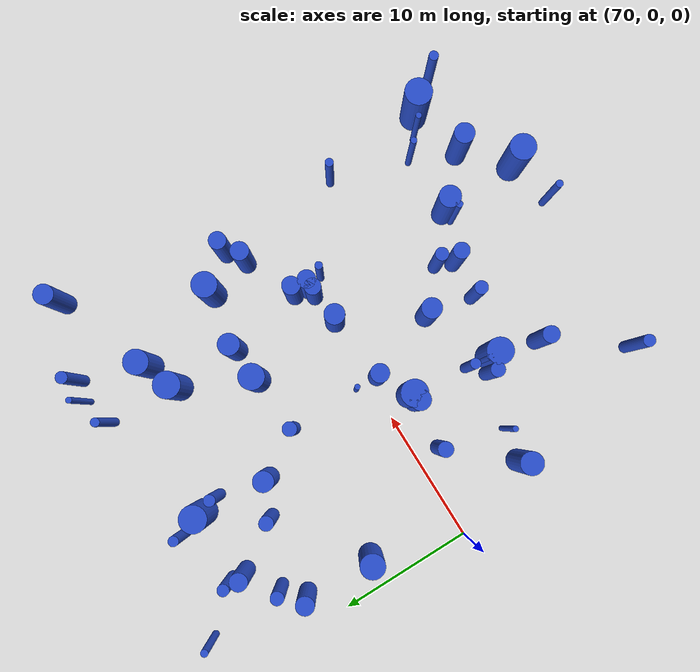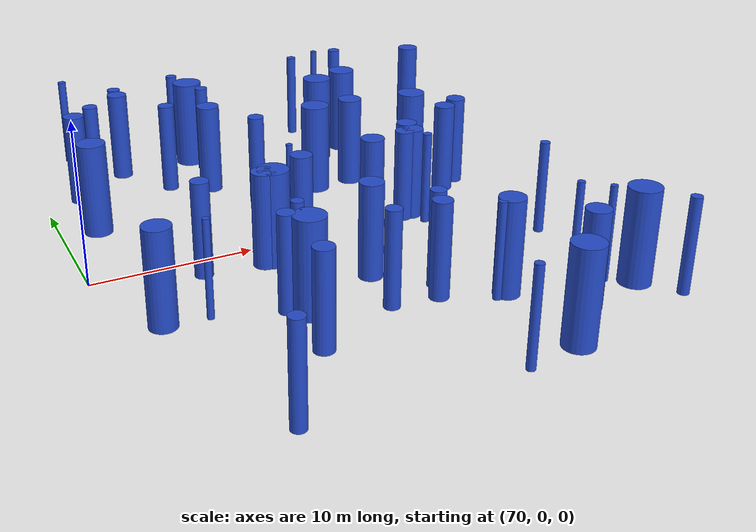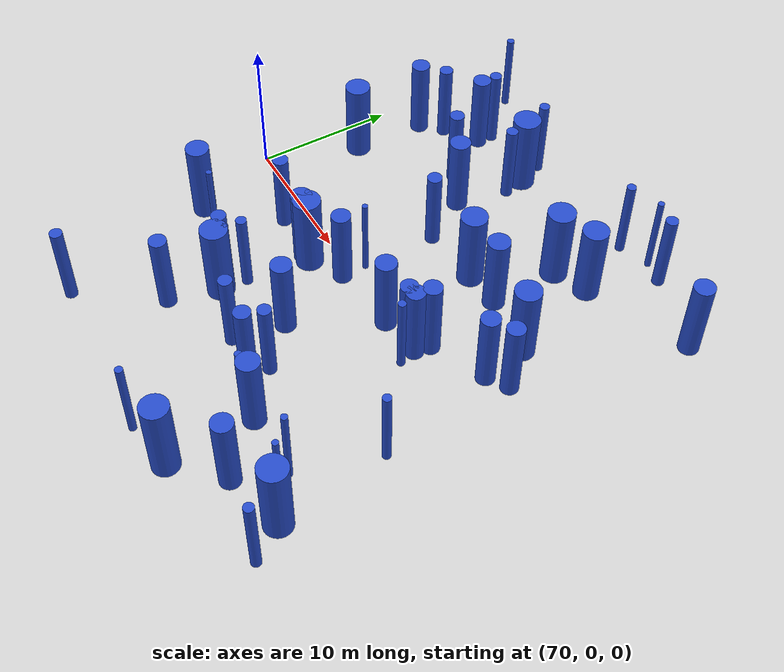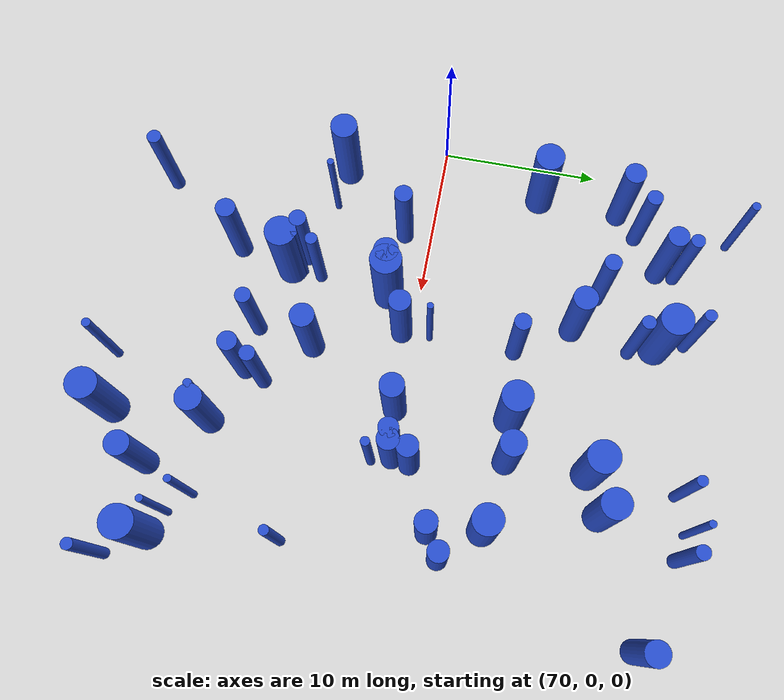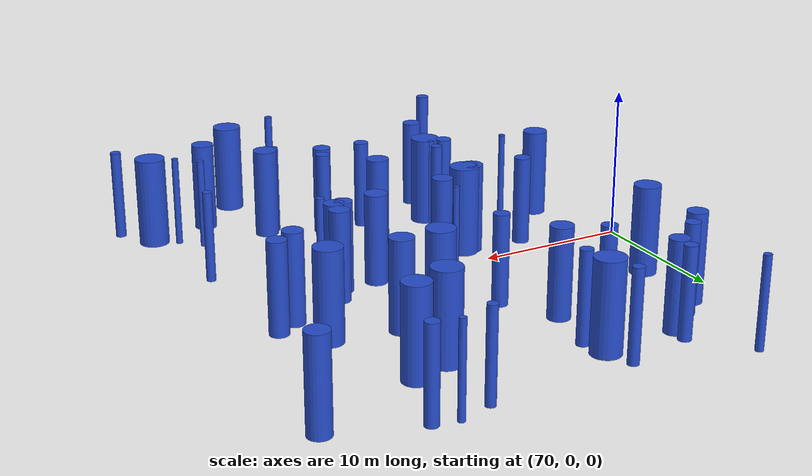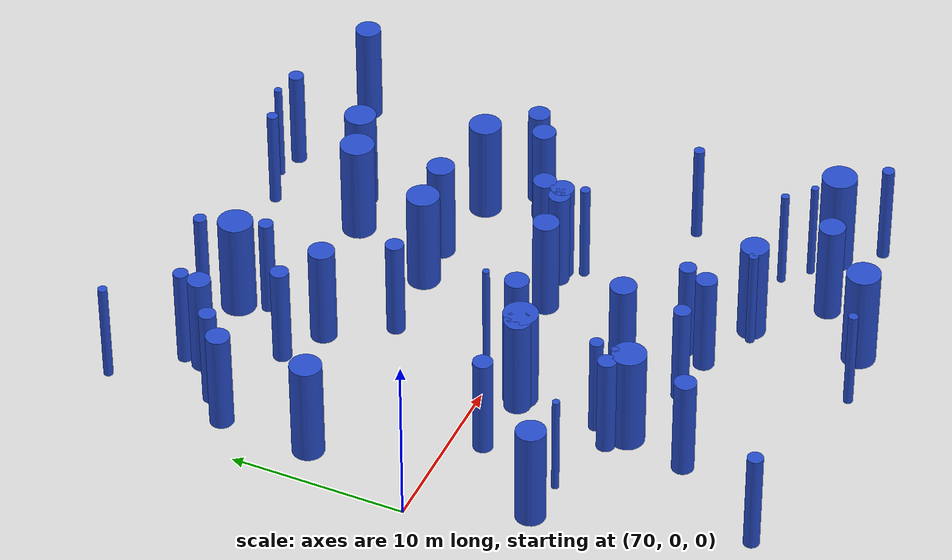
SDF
<sdf version="1.7">
 <world name="default">
  <model name="1">
   <static>1</static>
   <link name="link">
    <inertial>
     <mass>2</mass>
     <inertia><ixx>6.13726</ixx><ixy>0</ixy><ixz>0</ixz><iyy>6.13726</iyy><iyz>0</iyz><izz>0.274521</izz></inertia>
    </inertial>
    <collision name="collision">
     <geometry><cylinder><length>6</length><radius>0.523947</radius></cylinder></geometry>
     <surface><contact><collide_without_contact>1</collide_without_contact></contact></surface>
    </collision>
    <visual name="visual">
     <geometry><cylinder><length>6</length><radius>0.523947</radius></cylinder></geometry>
     <material>
      <script><uri>file://media/materials/scripts/gazebo.material</uri><name>Gazebo/Blue</name></script>
     </material>
    </visual>
    <gravity>0</gravity>
   </link>
   <pose>79.0825 -7.66138 3 0 -0 0</pose>
  </model>
  <model name="2">
   <static>1</static>
   <link name="link">
    <inertial>
     <mass>2</mass>
     <inertia><ixx>6.22225</ixx><ixy>0</ixy><ixz>0</ixz><iyy>6.22225</iyy><iyz>0</iyz><izz>0.444496</izz></inertia>
    </inertial>
    <collision name="collision">
     <geometry><cylinder><length>6</length><radius>0.666706</radius></cylinder></geometry>
     <surface><contact><collide_without_contact>1</collide_without_contact></contact></surface>
    </collision>
    <visual name="visual">
     <geometry><cylinder><length>6</length><radius>0.666706</radius></cylinder></geometry>
     <material>
      <script><uri>file://media/materials/scripts/gazebo.material</uri><name>Gazebo/Blue</name></script>
     </material>
    </visual>
    <gravity>0</gravity>
   </link>
   <pose>91.2671 0.181225 3 0 -0 0</pose>
  </model>
  <model name="4">
   <static>1</static>
   <link name="link">
    <inertial>
     <mass>2</mass>
     <inertia><ixx>6.48632</ixx><ixy>0</ixy><ixz>0</ixz><iyy>6.48632</iyy><iyz>0</iyz><izz>0.972646</izz></inertia>
    </inertial>
    <collision name="collision">
     <geometry><cylinder><length>6</length><radius>0.986228</radius></cylinder></geometry>
     <surface><contact><collide_without_contact>1</collide_without_contact></contact></surface>
    </collision>
    <visual name="visual">
     <geometry><cylinder><length>6</length><radius>0.986228</radius></cylinder></geometry>
     <material>
      <script><uri>file://media/materials/scripts/gazebo.material</uri><name>Gazebo/Blue</name></script>
     </material>
    </visual>
    <gravity>0</gravity>
   </link>
   <pose>81.4098 15.2934 3 0 -0 0</pose>
  </model>
  <model name="5">
   <static>1</static>
   <link name="link">
    <inertial>
     <mass>2</mass>
     <inertia><ixx>6.30722</ixx><ixy>0</ixy><ixz>0</ixz><iyy>6.30722</iyy><iyz>0</iyz><izz>0.614445</izz></inertia>
    </inertial>
    <collision name="collision">
     <geometry><cylinder><length>6</length><radius>0.783865</radius></cylinder></geometry>
     <surface><contact><collide_without_contact>1</collide_without_contact></contact></surface>
    </collision>
    <visual name="visual">
     <geometry><cylinder><length>6</length><radius>0.783865</radius></cylinder></geometry>
     <material>
      <script><uri>file://media/materials/scripts/gazebo.material</uri><name>Gazebo/Blue</name></script>
     </material>
    </visual>
    <gravity>0</gravity>
   </link>
   <pose>90.2586 7.07092 3 0 -0 0</pose>
  </model>
  <model name="9">
   <static>1</static>
   <link name="link">
    <inertial>
     <mass>2</mass>
     <inertia><ixx>6.13471</ixx><ixy>0</ixy><ixz>0</ixz><iyy>6.13471</iyy><iyz>0</iyz><izz>0.269422</izz></inertia>
    </inertial>
    <collision name="collision">
     <geometry><cylinder><length>6</length><radius>0.519059</radius></cylinder></geometry>
     <surface><contact><collide_without_contact>1</collide_without_contact></contact></surface>
    </collision>
    <visual name="visual">
     <geometry><cylinder><length>6</length><radius>0.519059</radius></cylinder></geometry>
     <material>
      <script><uri>file://media/materials/scripts/gazebo.material</uri><name>Gazebo/Blue</name></script>
     </material>
    </visual>
    <gravity>0</gravity>
   </link>
   <pose>83.1473 6.55157 3 0 -0 0</pose>
  </model>
  <model name="10">
   <static>1</static>
   <link name="link">
    <inertial>
     <mass>2</mass>
     <inertia><ixx>6.17693</ixx><ixy>0</ixy><ixz>0</ixz><iyy>6.17693</iyy><iyz>0</iyz><izz>0.353861</izz></inertia>
    </inertial>
    <collision name="collision">
     <geometry><cylinder><length>6</length><radius>0.594862</radius></cylinder></geometry>
     <surface><contact><collide_without_contact>1</collide_without_contact></contact></surface>
    </collision>
    <visual name="visual">
     <geometry><cylinder><length>6</length><radius>0.594862</radius></cylinder></geometry>
     <material>
      <script><uri>file://media/materials/scripts/gazebo.material</uri><name>Gazebo/Blue</name></script>
     </material>
    </visual>
    <gravity>0</gravity>
   </link>
   <pose>87.3229 -9.93889 3 0 -0 0</pose>
  </model>
  <model name="12">
   <static>1</static>
   <link name="link">
    <inertial>
     <mass>2</mass>
     <inertia><ixx>6.47437</ixx><ixy>0</ixy><ixz>0</ixz><iyy>6.47437</iyy><iyz>0</iyz><izz>0.948739</izz></inertia>
    </inertial>
    <collision name="collision">
     <geometry><cylinder><length>6</length><radius>0.974032</radius></cylinder></geometry>
     <surface><contact><collide_without_contact>1</collide_without_contact></contact></surface>
    </collision>
    <visual name="visual">
     <geometry><cylinder><length>6</length><radius>0.974032</radius></cylinder></geometry>
     <material>
      <script><uri>file://media/materials/scripts/gazebo.material</uri><name>Gazebo/Blue</name></script>
     </material>
    </visual>
    <gravity>0</gravity>
   </link>
   <pose>80.7273 -1.97986 3 0 -0 0</pose>
  </model>
  <model name="15">
   <static>1</static>
   <link name="link">
    <inertial>
     <mass>2</mass>
     <inertia><ixx>6.19986</ixx><ixy>0</ixy><ixz>0</ixz><iyy>6.19986</iyy><iyz>0</iyz><izz>0.399711</izz></inertia>
    </inertial>
    <collision name="collision">
     <geometry><cylinder><length>6</length><radius>0.632227</radius></cylinder></geometry>
     <surface><contact><collide_without_contact>1</collide_without_contact></contact></surface>
    </collision>
    <visual name="visual">
     <geometry><cylinder><length>6</length><radius>0.632227</radius></cylinder></geometry>
     <material>
      <script><uri>file://media/materials/scripts/gazebo.material</uri><name>Gazebo/Blue</name></script>
     </material>
    </visual>
    <gravity>0</gravity>
   </link>
   <pose>96.7974 3.99695 3 0 -0 0</pose>
  </model>
  <model name="19">
   <static>1</static>
   <link name="link">
    <inertial>
     <mass>2</mass>
     <inertia><ixx>6.40628</ixx><ixy>0</ixy><ixz>0</ixz><iyy>6.40628</iyy><iyz>0</iyz><izz>0.812551</izz></inertia>
    </inertial>
    <collision name="collision">
     <geometry><cylinder><length>6</length><radius>0.901416</radius></cylinder></geometry>
     <surface><contact><collide_without_contact>1</collide_without_contact></contact></surface>
    </collision>
    <visual name="visual">
     <geometry><cylinder><length>6</length><radius>0.901416</radius></cylinder></geometry>
     <material>
      <script><uri>file://media/materials/scripts/gazebo.material</uri><name>Gazebo/Blue</name></script>
     </material>
    </visual>
    <gravity>0</gravity>
   </link>
   <pose>92.5748 13.081 3 0 -0 0</pose>
  </model>
  <model name="21">
   <static>1</static>
   <link name="link">
    <inertial>
     <mass>2</mass>
     <inertia><ixx>6.08841</ixx><ixy>0</ixy><ixz>0</ixz><iyy>6.08841</iyy><iyz>0</iyz><izz>0.176826</izz></inertia>
    </inertial>
    <collision name="collision">
     <geometry><cylinder><length>6</length><radius>0.420507</radius></cylinder></geometry>
     <surface><contact><collide_without_contact>1</collide_without_contact></contact></surface>
    </collision>
    <visual name="visual">
     <geometry><cylinder><length>6</length><radius>0.420507</radius></cylinder></geometry>
     <material>
      <script><uri>file://media/materials/scripts/gazebo.material</uri><name>Gazebo/Blue</name></script>
     </material>
    </visual>
    <gravity>0</gravity>
   </link>
   <pose>81.9008 13.6855 3 0 -0 0</pose>
  </model>
  <model name="22">
   <static>1</static>
   <link name="link">
    <inertial>
     <mass>2</mass>
     <inertia><ixx>6.22569</ixx><ixy>0</ixy><ixz>0</ixz><iyy>6.22569</iyy><iyz>0</iyz><izz>0.45137</izz></inertia>
    </inertial>
    <collision name="collision">
     <geometry><cylinder><length>6</length><radius>0.671841</radius></cylinder></geometry>
     <surface><contact><collide_without_contact>1</collide_without_contact></contact></surface>
    </collision>
    <visual name="visual">
     <geometry><cylinder><length>6</length><radius>0.671841</radius></cylinder></geometry>
     <material>
      <script><uri>file://media/materials/scripts/gazebo.material</uri><name>Gazebo/Blue</name></script>
     </material>
    </visual>
    <gravity>0</gravity>
   </link>
   <pose>95.3721 3.08072 3 0 -0 0</pose>
  </model>
  <model name="23">
   <static>1</static>
   <link name="link">
    <inertial>
     <mass>2</mass>
     <inertia><ixx>6.26513</ixx><ixy>0</ixy><ixz>0</ixz><iyy>6.26513</iyy><iyz>0</iyz><izz>0.53027</izz></inertia>
    </inertial>
    <collision name="collision">
     <geometry><cylinder><length>6</length><radius>0.728196</radius></cylinder></geometry>
     <surface><contact><collide_without_contact>1</collide_without_contact></contact></surface>
    </collision>
    <visual name="visual">
     <geometry><cylinder><length>6</length><radius>0.728196</radius></cylinder></geometry>
     <material>
      <script><uri>file://media/materials/scripts/gazebo.material</uri><name>Gazebo/Blue</name></script>
     </material>
    </visual>
    <gravity>0</gravity>
   </link>
   <pose>99.903 16.0704 3 0 -0 0</pose>
  </model>
  <model name="26">
   <static>1</static>
   <link name="link">
    <inertial>
     <mass>2</mass>
     <inertia><ixx>6.07083</ixx><ixy>0</ixy><ixz>0</ixz><iyy>6.07083</iyy><iyz>0</iyz><izz>0.141653</izz></inertia>
    </inertial>
    <collision name="collision">
     <geometry><cylinder><length>6</length><radius>0.376368</radius></cylinder></geometry>
     <surface><contact><collide_without_contact>1</collide_without_contact></contact></surface>
    </collision>
    <visual name="visual">
     <geometry><cylinder><length>6</length><radius>0.376368</radius></cylinder></geometry>
     <material>
      <script><uri>file://media/materials/scripts/gazebo.material</uri><name>Gazebo/Blue</name></script>
     </material>
    </visual>
    <gravity>0</gravity>
   </link>
   <pose>80.2366 -6.5725 3 0 -0 0</pose>
  </model>
  <model name="28">
   <static>1</static>
   <link name="link">
    <inertial>
     <mass>2</mass>
     <inertia><ixx>6.2172</ixx><ixy>0</ixy><ixz>0</ixz><iyy>6.2172</iyy><iyz>0</iyz><izz>0.434403</izz></inertia>
    </inertial>
    <collision name="collision">
     <geometry><cylinder><length>6</length><radius>0.659093</radius></cylinder></geometry>
     <surface><contact><collide_without_contact>1</collide_without_contact></contact></surface>
    </collision>
    <visual name="visual">
     <geometry><cylinder><length>6</length><radius>0.659093</radius></cylinder></geometry>
     <material>
      <script><uri>file://media/materials/scripts/gazebo.material</uri><name>Gazebo/Blue</name></script>
     </material>
    </visual>
    <gravity>0</gravity>
   </link>
   <pose>91.4611 1.32284 3 0 -0 0</pose>
  </model>
  <model name="31">
   <static>1</static>
   <link name="link">
    <inertial>
     <mass>2</mass>
     <inertia>
      <ixx>6.02361</ixx>
      <ixy>0</ixy>
      <ixz>0</ixz>
      <iyy>6.02361</iyy>
      <iyz>0</iyz>
      <izz>0.0472233</izz>
     </inertia>
    </inertial>
    <collision name="collision">
     <geometry><cylinder><length>6</length><radius>0.217309</radius></cylinder></geometry>
     <surface><contact><collide_without_contact>1</collide_without_contact></contact></surface>
    </collision>
    <visual name="visual">
     <geometry><cylinder><length>6</length><radius>0.217309</radius></cylinder></geometry>
     <material>
      <script><uri>file://media/materials/scripts/gazebo.material</uri><name>Gazebo/Blue</name></script>
     </material>
    </visual>
    <gravity>0</gravity>
   </link>
   <pose>96.9028 -12.4642 3 0 -0 0</pose>
  </model>
  <model name="32">
   <static>1</static>
   <link name="link">
    <inertial>
     <mass>2</mass>
     <inertia><ixx>6.06788</ixx><ixy>0</ixy><ixz>0</ixz><iyy>6.06788</iyy><iyz>0</iyz><izz>0.135764</izz></inertia>
    </inertial>
    <collision name="collision">
     <geometry><cylinder><length>6</length><radius>0.368461</radius></cylinder></geometry>
     <surface><contact><collide_without_contact>1</collide_without_contact></contact></surface>
    </collision>
    <visual name="visual">
     <geometry><cylinder><length>6</length><radius>0.368461</radius></cylinder></geometry>
     <material>
      <script><uri>file://media/materials/scripts/gazebo.material</uri><name>Gazebo/Blue</name></script>
     </material>
    </visual>
    <gravity>0</gravity>
   </link>
   <pose>80.853 17.1568 3 0 -0 0</pose>
  </model>
  <model name="36">
   <static>1</static>
   <link name="link">
    <inertial>
     <mass>2</mass>
     <inertia><ixx>6.11851</ixx><ixy>0</ixy><ixz>0</ixz><iyy>6.11851</iyy><iyz>0</iyz><izz>0.237017</izz></inertia>
    </inertial>
    <collision name="collision">
     <geometry><cylinder><length>6</length><radius>0.486844</radius></cylinder></geometry>
     <surface><contact><collide_without_contact>1</collide_without_contact></contact></surface>
    </collision>
    <visual name="visual">
     <geometry><cylinder><length>6</length><radius>0.486844</radius></cylinder></geometry>
     <material>
      <script><uri>file://media/materials/scripts/gazebo.material</uri><name>Gazebo/Blue</name></script>
     </material>
    </visual>
    <gravity>0</gravity>
   </link>
   <pose>73.9343 13.2036 3 0 -0 0</pose>
  </model>
  <model name="38">
   <static>1</static>
   <link name="link">
    <inertial>
     <mass>2</mass>
     <inertia><ixx>6.27451</ixx><ixy>0</ixy><ixz>0</ixz><iyy>6.27451</iyy><iyz>0</iyz><izz>0.549024</izz></inertia>
    </inertial>
    <collision name="collision">
     <geometry><cylinder><length>6</length><radius>0.740961</radius></cylinder></geometry>
     <surface><contact><collide_without_contact>1</collide_without_contact></contact></surface>
    </collision>
    <visual name="visual">
     <geometry><cylinder><length>6</length><radius>0.740961</radius></cylinder></geometry>
     <material>
      <script><uri>file://media/materials/scripts/gazebo.material</uri><name>Gazebo/Blue</name></script>
     </material>
    </visual>
    <gravity>0</gravity>
   </link>
   <pose>85.0306 -6.07382 3 0 -0 0</pose>
  </model>
  <model name="41">
   <static>1</static>
   <link name="link">
    <inertial>
     <mass>2</mass>
     <inertia><ixx>6.11796</ixx><ixy>0</ixy><ixz>0</ixz><iyy>6.11796</iyy><iyz>0</iyz><izz>0.235925</izz></inertia>
    </inertial>
    <collision name="collision">
     <geometry><cylinder><length>6</length><radius>0.485721</radius></cylinder></geometry>
     <surface><contact><collide_without_contact>1</collide_without_contact></contact></surface>
    </collision>
    <visual name="visual">
     <geometry><cylinder><length>6</length><radius>0.485721</radius></cylinder></geometry>
     <material>
      <script><uri>file://media/materials/scripts/gazebo.material</uri><name>Gazebo/Blue</name></script>
     </material>
    </visual>
    <gravity>0</gravity>
   </link>
   <pose>84.4381 -9.72074 3 0 -0 0</pose>
  </model>
  <model name="42">
   <static>1</static>
   <link name="link">
    <inertial>
     <mass>2</mass>
     <inertia>
      <ixx>6.02204</ixx>
      <ixy>0</ixy>
      <ixz>0</ixz>
      <iyy>6.02204</iyy>
      <iyz>0</iyz>
      <izz>0.0440786</izz>
     </inertia>
    </inertial>
    <collision name="collision">
     <geometry><cylinder><length>6</length><radius>0.209949</radius></cylinder></geometry>
     <surface><contact><collide_without_contact>1</collide_without_contact></contact></surface>
    </collision>
    <visual name="visual">
     <geometry><cylinder><length>6</length><radius>0.209949</radius></cylinder></geometry>
     <material>
      <script><uri>file://media/materials/scripts/gazebo.material</uri><name>Gazebo/Blue</name></script>
     </material>
    </visual>
    <gravity>0</gravity>
   </link>
   <pose>75.056 -6.49444 3 0 -0 0</pose>
  </model>
  <model name="51">
   <static>1</static>
   <link name="link">
    <inertial>
     <mass>2</mass>
     <inertia><ixx>6.21068</ixx><ixy>0</ixy><ixz>0</ixz><iyy>6.21068</iyy><iyz>0</iyz><izz>0.421362</izz></inertia>
    </inertial>
    <collision name="collision">
     <geometry><cylinder><length>6</length><radius>0.649124</radius></cylinder></geometry>
     <surface><contact><collide_without_contact>1</collide_without_contact></contact></surface>
    </collision>
    <visual name="visual">
     <geometry><cylinder><length>6</length><radius>0.649124</radius></cylinder></geometry>
     <material>
      <script><uri>file://media/materials/scripts/gazebo.material</uri><name>Gazebo/Blue</name></script>
     </material>
    </visual>
    <gravity>0</gravity>
   </link>
   <pose>76.2168 14.8566 3 0 -0 0</pose>
  </model>
  <model name="54">
   <static>1</static>
   <link name="link">
    <inertial>
     <mass>2</mass>
     <inertia>
      <ixx>6.03558</ixx>
      <ixy>0</ixy>
      <ixz>0</ixz>
      <iyy>6.03558</iyy>
      <iyz>0</iyz>
      <izz>0.0711682</izz>
     </inertia>
    </inertial>
    <collision name="collision">
     <geometry><cylinder><length>6</length><radius>0.266774</radius></cylinder></geometry>
     <surface><contact><collide_without_contact>1</collide_without_contact></contact></surface>
    </collision>
    <visual name="visual">
     <geometry><cylinder><length>6</length><radius>0.266774</radius></cylinder></geometry>
     <material>
      <script><uri>file://media/materials/scripts/gazebo.material</uri><name>Gazebo/Blue</name></script>
     </material>
    </visual>
    <gravity>0</gravity>
   </link>
   <pose>73.4351 19.2131 3 0 -0 0</pose>
  </model>
  <model name="56">
   <static>1</static>
   <link name="link">
    <inertial>
     <mass>2</mass>
     <inertia><ixx>6.02038</ixx><ixy>0</ixy><ixz>0</ixz><iyy>6.02038</iyy><iyz>0</iyz><izz>0.040758</izz></inertia>
    </inertial>
    <collision name="collision">
     <geometry><cylinder><length>6</length><radius>0.201886</radius></cylinder></geometry>
     <surface><contact><collide_without_contact>1</collide_without_contact></contact></surface>
    </collision>
    <visual name="visual">
     <geometry><cylinder><length>6</length><radius>0.201886</radius></cylinder></geometry>
     <material>
      <script><uri>file://media/materials/scripts/gazebo.material</uri><name>Gazebo/Blue</name></script>
     </material>
    </visual>
    <gravity>0</gravity>
   </link>
   <pose>83.1428 1.12239 3 0 -0 0</pose>
  </model>
  <model name="61">
   <static>1</static>
   <link name="link">
    <inertial>
     <mass>2</mass>
     <inertia><ixx>6.11407</ixx><ixy>0</ixy><ixz>0</ixz><iyy>6.11407</iyy><iyz>0</iyz><izz>0.228142</izz></inertia>
    </inertial>
    <collision name="collision">
     <geometry><cylinder><length>6</length><radius>0.477642</radius></cylinder></geometry>
     <surface><contact><collide_without_contact>1</collide_without_contact></contact></surface>
    </collision>
    <visual name="visual">
     <geometry><cylinder><length>6</length><radius>0.477642</radius></cylinder></geometry>
     <material>
      <script><uri>file://media/materials/scripts/gazebo.material</uri><name>Gazebo/Blue</name></script>
     </material>
    </visual>
    <gravity>0</gravity>
   </link>
   <pose>87.8311 -8.65193 3 0 -0 0</pose>
  </model>
  <model name="63">
   <static>1</static>
   <link name="link">
    <inertial>
     <mass>2</mass>
     <inertia><ixx>6.45196</ixx><ixy>0</ixy><ixz>0</ixz><iyy>6.45196</iyy><iyz>0</iyz><izz>0.903928</izz></inertia>
    </inertial>
    <collision name="collision">
     <geometry><cylinder><length>6</length><radius>0.950751</radius></cylinder></geometry>
     <surface><contact><collide_without_contact>1</collide_without_contact></contact></surface>
    </collision>
    <visual name="visual">
     <geometry><cylinder><length>6</length><radius>0.950751</radius></cylinder></geometry>
     <material>
      <script><uri>file://media/materials/scripts/gazebo.material</uri><name>Gazebo/Blue</name></script>
     </material>
    </visual>
    <gravity>0</gravity>
   </link>
   <pose>91.2058 -17.4489 3 0 -0 0</pose>
  </model>
  <model name="67">
   <static>1</static>
   <link name="link">
    <inertial>
     <mass>2</mass>
     <inertia><ixx>6.34586</ixx><ixy>0</ixy><ixz>0</ixz><iyy>6.34586</iyy><iyz>0</iyz><izz>0.691722</izz></inertia>
    </inertial>
    <collision name="collision">
     <geometry><cylinder><length>6</length><radius>0.831699</radius></cylinder></geometry>
     <surface><contact><collide_without_contact>1</collide_without_contact></contact></surface>
    </collision>
    <visual name="visual">
     <geometry><cylinder><length>6</length><radius>0.831699</radius></cylinder></geometry>
     <material>
      <script><uri>file://media/materials/scripts/gazebo.material</uri><name>Gazebo/Blue</name></script>
     </material>
    </visual>
    <gravity>0</gravity>
   </link>
   <pose>72.4865 -6.20072 3 0 -0 0</pose>
  </model>
  <model name="72">
   <static>1</static>
   <link name="link">
    <inertial>
     <mass>2</mass>
     <inertia>
      <ixx>6.03907</ixx>
      <ixy>0</ixy>
      <ixz>0</ixz>
      <iyy>6.03907</iyy>
      <iyz>0</iyz>
      <izz>0.0781316</izz>
     </inertia>
    </inertial>
    <collision name="collision">
     <geometry><cylinder><length>6</length><radius>0.27952</radius></cylinder></geometry>
     <surface><contact><collide_without_contact>1</collide_without_contact></contact></surface>
    </collision>
    <visual name="visual">
     <geometry><cylinder><length>6</length><radius>0.27952</radius></cylinder></geometry>
     <material>
      <script><uri>file://media/materials/scripts/gazebo.material</uri><name>Gazebo/Blue</name></script>
     </material>
    </visual>
    <gravity>0</gravity>
   </link>
   <pose>91.6373 -1.02528 3 0 -0 0</pose>
  </model>
  <model name="83">
   <static>1</static>
   <link name="link">
    <inertial>
     <mass>2</mass>
     <inertia><ixx>6.0273</ixx><ixy>0</ixy><ixz>0</ixz><iyy>6.0273</iyy><iyz>0</iyz><izz>0.0546069</izz></inertia>
    </inertial>
    <collision name="collision">
     <geometry><cylinder><length>6</length><radius>0.233681</radius></cylinder></geometry>
     <surface><contact><collide_without_contact>1</collide_without_contact></contact></surface>
    </collision>
    <visual name="visual">
     <geometry><cylinder><length>6</length><radius>0.233681</radius></cylinder></geometry>
     <material>
      <script><uri>file://media/materials/scripts/gazebo.material</uri><name>Gazebo/Blue</name></script>
     </material>
    </visual>
    <gravity>0</gravity>
   </link>
   <pose>95.5868 -11.2314 3 0 -0 0</pose>
  </model>
  <model name="85">
   <static>1</static>
   <link name="link">
    <inertial>
     <mass>2</mass>
     <inertia><ixx>6.49099</ixx><ixy>0</ixy><ixz>0</ixz><iyy>6.49099</iyy><iyz>0</iyz><izz>0.981986</izz></inertia>
    </inertial>
    <collision name="collision">
     <geometry><cylinder><length>6</length><radius>0.990952</radius></cylinder></geometry>
     <surface><contact><collide_without_contact>1</collide_without_contact></contact></surface>
    </collision>
    <visual name="visual">
     <geometry><cylinder><length>6</length><radius>0.990952</radius></cylinder></geometry>
     <material>
      <script><uri>file://media/materials/scripts/gazebo.material</uri><name>Gazebo/Blue</name></script>
     </material>
    </visual>
    <gravity>0</gravity>
   </link>
   <pose>98.3417 -13.3671 3 0 -0 0</pose>
  </model>
  <model name="86">
   <static>1</static>
   <link name="link">
    <inertial>
     <mass>2</mass>
     <inertia><ixx>6.27673</ixx><ixy>0</ixy><ixz>0</ixz><iyy>6.27673</iyy><iyz>0</iyz><izz>0.553452</izz></inertia>
    </inertial>
    <collision name="collision">
     <geometry><cylinder><length>6</length><radius>0.743944</radius></cylinder></geometry>
     <surface><contact><collide_without_contact>1</collide_without_contact></contact></surface>
    </collision>
    <visual name="visual">
     <geometry><cylinder><length>6</length><radius>0.743944</radius></cylinder></geometry>
     <material>
      <script><uri>file://media/materials/scripts/gazebo.material</uri><name>Gazebo/Blue</name></script>
     </material>
    </visual>
    <gravity>0</gravity>
   </link>
   <pose>88.2037 -0.176928 3 0 -0 0</pose>
  </model>
  <model name="89">
   <static>1</static>
   <link name="link">
    <inertial>
     <mass>2</mass>
     <inertia><ixx>6.4705</ixx><ixy>0</ixy><ixz>0</ixz><iyy>6.4705</iyy><iyz>0</iyz><izz>0.941003</izz></inertia>
    </inertial>
    <collision name="collision">
     <geometry><cylinder><length>6</length><radius>0.970053</radius></cylinder></geometry>
     <surface><contact><collide_without_contact>1</collide_without_contact></contact></surface>
    </collision>
    <visual name="visual">
     <geometry><cylinder><length>6</length><radius>0.970053</radius></cylinder></geometry>
     <material>
      <script><uri>file://media/materials/scripts/gazebo.material</uri><name>Gazebo/Blue</name></script>
     </material>
    </visual>
    <gravity>0</gravity>
   </link>
   <pose>90.1267 12.1076 3 0 -0 0</pose>
  </model>
  <model name="91">
   <static>1</static>
   <link name="link">
    <inertial>
     <mass>2</mass>
     <inertia><ixx>6.22202</ixx><ixy>0</ixy><ixz>0</ixz><iyy>6.22202</iyy><iyz>0</iyz><izz>0.444034</izz></inertia>
    </inertial>
    <collision name="collision">
     <geometry><cylinder><length>6</length><radius>0.666359</radius></cylinder></geometry>
     <surface><contact><collide_without_contact>1</collide_without_contact></contact></surface>
    </collision>
    <visual name="visual">
     <geometry><cylinder><length>6</length><radius>0.666359</radius></cylinder></geometry>
     <material>
      <script><uri>file://media/materials/scripts/gazebo.material</uri><name>Gazebo/Blue</name></script>
     </material>
    </visual>
    <gravity>0</gravity>
   </link>
   <pose>72.5225 11.873 3 0 -0 0</pose>
  </model>
  <model name="92">
   <static>1</static>
   <link name="link">
    <inertial>
     <mass>2</mass>
     <inertia>
      <ixx>6.03584</ixx>
      <ixy>0</ixy>
      <ixz>0</ixz>
      <iyy>6.03584</iyy>
      <iyz>0</iyz>
      <izz>0.0716711</izz>
     </inertia>
    </inertial>
    <collision name="collision">
     <geometry><cylinder><length>6</length><radius>0.267715</radius></cylinder></geometry>
     <surface><contact><collide_without_contact>1</collide_without_contact></contact></surface>
    </collision>
    <visual name="visual">
     <geometry><cylinder><length>6</length><radius>0.267715</radius></cylinder></geometry>
     <material>
      <script><uri>file://media/materials/scripts/gazebo.material</uri><name>Gazebo/Blue</name></script>
     </material>
    </visual>
    <gravity>0</gravity>
   </link>
   <pose>87.692 -18.1768 3 0 -0 0</pose>
  </model>
  <model name="95">
   <static>1</static>
   <link name="link">
    <inertial>
     <mass>2</mass>
     <inertia><ixx>6.18241</ixx><ixy>0</ixy><ixz>0</ixz><iyy>6.18241</iyy><iyz>0</iyz><izz>0.364816</izz></inertia>
    </inertial>
    <collision name="collision">
     <geometry><cylinder><length>6</length><radius>0.604</radius></cylinder></geometry>
     <surface><contact><collide_without_contact>1</collide_without_contact></contact></surface>
    </collision>
    <visual name="visual">
     <geometry><cylinder><length>6</length><radius>0.604</radius></cylinder></geometry>
     <material>
      <script><uri>file://media/materials/scripts/gazebo.material</uri><name>Gazebo/Blue</name></script>
     </material>
    </visual>
    <gravity>0</gravity>
   </link>
   <pose>90.6245 0.09421 3 0 -0 0</pose>
  </model>
  <model name="96">
   <static>1</static>
   <link name="link">
    <inertial>
     <mass>2</mass>
     <inertia><ixx>6.27592</ixx><ixy>0</ixy><ixz>0</ixz><iyy>6.27592</iyy><iyz>0</iyz><izz>0.551837</izz></inertia>
    </inertial>
    <collision name="collision">
     <geometry><cylinder><length>6</length><radius>0.742857</radius></cylinder></geometry>
     <surface><contact><collide_without_contact>1</collide_without_contact></contact></surface>
    </collision>
    <visual name="visual">
     <geometry><cylinder><length>6</length><radius>0.742857</radius></cylinder></geometry>
     <material>
      <script><uri>file://media/materials/scripts/gazebo.material</uri><name>Gazebo/Blue</name></script>
     </material>
    </visual>
    <gravity>0</gravity>
   </link>
   <pose>81.0577 9.93077 3 0 -0 0</pose>
  </model>
  <model name="97">
   <static>1</static>
   <link name="link">
    <inertial>
     <mass>2</mass>
     <inertia><ixx>6.31806</ixx><ixy>0</ixy><ixz>0</ixz><iyy>6.31806</iyy><iyz>0</iyz><izz>0.636122</izz></inertia>
    </inertial>
    <collision name="collision">
     <geometry><cylinder><length>6</length><radius>0.797572</radius></cylinder></geometry>
     <surface><contact><collide_without_contact>1</collide_without_contact></contact></surface>
    </collision>
    <visual name="visual">
     <geometry><cylinder><length>6</length><radius>0.797572</radius></cylinder></geometry>
     <material>
      <script><uri>file://media/materials/scripts/gazebo.material</uri><name>Gazebo/Blue</name></script>
     </material>
    </visual>
    <gravity>0</gravity>
   </link>
   <pose>90.9308 -11.287 3 0 -0 0</pose>
  </model>
  <model name="98">
   <static>1</static>
   <link name="link">
    <inertial>
     <mass>2</mass>
     <inertia><ixx>6.23045</ixx><ixy>0</ixy><ixz>0</ixz><iyy>6.23045</iyy><iyz>0</iyz><izz>0.460894</izz></inertia>
    </inertial>
    <collision name="collision">
     <geometry><cylinder><length>6</length><radius>0.678891</radius></cylinder></geometry>
     <surface><contact><collide_without_contact>1</collide_without_contact></contact></surface>
    </collision>
    <visual name="visual">
     <geometry><cylinder><length>6</length><radius>0.678891</radius></cylinder></geometry>
     <material>
      <script><uri>file://media/materials/scripts/gazebo.material</uri><name>Gazebo/Blue</name></script>
     </material>
    </visual>
    <gravity>0</gravity>
   </link>
   <pose>83.1274 -0.687307 3 0 -0 0</pose>
  </model>
  <model name="105">
   <static>1</static>
   <link name="link">
    <inertial>
     <mass>2</mass>
     <inertia><ixx>6.39664</ixx><ixy>0</ixy><ixz>0</ixz><iyy>6.39664</iyy><iyz>0</iyz><izz>0.793275</izz></inertia>
    </inertial>
    <collision name="collision">
     <geometry><cylinder><length>6</length><radius>0.89066</radius></cylinder></geometry>
     <surface><contact><collide_without_contact>1</collide_without_contact></contact></surface>
    </collision>
    <visual name="visual">
     <geometry><cylinder><length>6</length><radius>0.89066</radius></cylinder></geometry>
     <material>
      <script><uri>file://media/materials/scripts/gazebo.material</uri><name>Gazebo/Blue</name></script>
     </material>
    </visual>
    <gravity>0</gravity>
   </link>
   <pose>72.332 6.63262 3 0 -0 0</pose>
  </model>
  <model name="113">
   <static>1</static>
   <link name="link">
    <inertial>
     <mass>2</mass>
     <inertia><ixx>6.43572</ixx><ixy>0</ixy><ixz>0</ixz><iyy>6.43572</iyy><iyz>0</iyz><izz>0.871441</izz></inertia>
    </inertial>
    <collision name="collision">
     <geometry><cylinder><length>6</length><radius>0.93351</radius></cylinder></geometry>
     <surface><contact><collide_without_contact>1</collide_without_contact></contact></surface>
    </collision>
    <visual name="visual">
     <geometry><cylinder><length>6</length><radius>0.93351</radius></cylinder></geometry>
     <material>
      <script><uri>file://media/materials/scripts/gazebo.material</uri><name>Gazebo/Blue</name></script>
     </material>
    </visual>
    <gravity>0</gravity>
   </link>
   <pose>87.5579 6.90231 3 0 -0 0</pose>
  </model>
  <model name="114">
   <static>1</static>
   <link name="link">
    <inertial>
     <mass>2</mass>
     <inertia><ixx>6.18924</ixx><ixy>0</ixy><ixz>0</ixz><iyy>6.18924</iyy><iyz>0</iyz><izz>0.378478</izz></inertia>
    </inertial>
    <collision name="collision">
     <geometry><cylinder><length>6</length><radius>0.615206</radius></cylinder></geometry>
     <surface><contact><collide_without_contact>1</collide_without_contact></contact></surface>
    </collision>
    <visual name="visual">
     <geometry><cylinder><length>6</length><radius>0.615206</radius></cylinder></geometry>
     <material>
      <script><uri>file://media/materials/scripts/gazebo.material</uri><name>Gazebo/Blue</name></script>
     </material>
    </visual>
    <gravity>0</gravity>
   </link>
   <pose>79.1976 -12.0524 3 0 -0 0</pose>
  </model>
  <model name="115">
   <static>1</static>
   <link name="link">
    <inertial>
     <mass>2</mass>
     <inertia><ixx>6.15438</ixx><ixy>0</ixy><ixz>0</ixz><iyy>6.15438</iyy><iyz>0</iyz><izz>0.308762</izz></inertia>
    </inertial>
    <collision name="collision">
     <geometry><cylinder><length>6</length><radius>0.555664</radius></cylinder></geometry>
     <surface><contact><collide_without_contact>1</collide_without_contact></contact></surface>
    </collision>
    <visual name="visual">
     <geometry><cylinder><length>6</length><radius>0.555664</radius></cylinder></geometry>
     <material>
      <script><uri>file://media/materials/scripts/gazebo.material</uri><name>Gazebo/Blue</name></script>
     </material>
    </visual>
    <gravity>0</gravity>
   </link>
   <pose>76.3764 -1.7317 3 0 -0 0</pose>
  </model>
  <model name="117">
   <static>1</static>
   <link name="link">
    <inertial>
     <mass>2</mass>
     <inertia><ixx>6.42399</ixx><ixy>0</ixy><ixz>0</ixz><iyy>6.42399</iyy><iyz>0</iyz><izz>0.847978</izz></inertia>
    </inertial>
    <collision name="collision">
     <geometry><cylinder><length>6</length><radius>0.920857</radius></cylinder></geometry>
     <surface><contact><collide_without_contact>1</collide_without_contact></contact></surface>
    </collision>
    <visual name="visual">
     <geometry><cylinder><length>6</length><radius>0.920857</radius></cylinder></geometry>
     <material>
      <script><uri>file://media/materials/scripts/gazebo.material</uri><name>Gazebo/Blue</name></script>
     </material>
    </visual>
    <gravity>0</gravity>
   </link>
   <pose>94.6592 6.35378 3 0 -0 0</pose>
  </model>
  <model name="123">
   <static>1</static>
   <link name="link">
    <inertial>
     <mass>2</mass>
     <inertia>
      <ixx>6.02511</ixx>
      <ixy>0</ixy>
      <ixz>0</ixz>
      <iyy>6.02511</iyy>
      <iyz>0</iyz>
      <izz>0.0502241</izz>
     </inertia>
    </inertial>
    <collision name="collision">
     <geometry><cylinder><length>6</length><radius>0.224107</radius></cylinder></geometry>
     <surface><contact><collide_without_contact>1</collide_without_contact></contact></surface>
    </collision>
    <visual name="visual">
     <geometry><cylinder><length>6</length><radius>0.224107</radius></cylinder></geometry>
     <material>
      <script><uri>file://media/materials/scripts/gazebo.material</uri><name>Gazebo/Blue</name></script>
     </material>
    </visual>
    <gravity>0</gravity>
   </link>
   <pose>92.7403 18.2825 3 0 -0 0</pose>
  </model>
  <model name="126">
   <static>1</static>
   <link name="link">
    <inertial>
     <mass>2</mass>
     <inertia>
      <ixx>6.03287</ixx>
      <ixy>0</ixy>
      <ixz>0</ixz>
      <iyy>6.03287</iyy>
      <iyz>0</iyz>
      <izz>0.0657482</izz>
     </inertia>
    </inertial>
    <collision name="collision">
     <geometry><cylinder><length>6</length><radius>0.256414</radius></cylinder></geometry>
     <surface><contact><collide_without_contact>1</collide_without_contact></contact></surface>
    </collision>
    <visual name="visual">
     <geometry><cylinder><length>6</length><radius>0.256414</radius></cylinder></geometry>
     <material>
      <script><uri>file://media/materials/scripts/gazebo.material</uri><name>Gazebo/Blue</name></script>
     </material>
    </visual>
    <gravity>0</gravity>
   </link>
   <pose>90.1417 -11.5311 3 0 -0 0</pose>
  </model>
  <model name="127">
   <static>1</static>
   <link name="link">
    <inertial>
     <mass>2</mass>
     <inertia><ixx>6.27307</ixx><ixy>0</ixy><ixz>0</ixz><iyy>6.27307</iyy><iyz>0</iyz><izz>0.546132</izz></inertia>
    </inertial>
    <collision name="collision">
     <geometry><cylinder><length>6</length><radius>0.739007</radius></cylinder></geometry>
     <surface><contact><collide_without_contact>1</collide_without_contact></contact></surface>
    </collision>
    <visual name="visual">
     <geometry><cylinder><length>6</length><radius>0.739007</radius></cylinder></geometry>
     <material>
      <script><uri>file://media/materials/scripts/gazebo.material</uri><name>Gazebo/Blue</name></script>
     </material>
    </visual>
    <gravity>0</gravity>
   </link>
   <pose>94.1785 -14.5155 3 0 -0 0</pose>
  </model>
  <model name="130">
   <static>1</static>
   <link name="link">
    <inertial>
     <mass>2</mass>
     <inertia>
      <ixx>6.04625</ixx>
      <ixy>0</ixy>
      <ixz>0</ixz>
      <iyy>6.04625</iyy>
      <iyz>0</iyz>
      <izz>0.0924927</izz>
     </inertia>
    </inertial>
    <collision name="collision">
     <geometry><cylinder><length>6</length><radius>0.304126</radius></cylinder></geometry>
     <surface><contact><collide_without_contact>1</collide_without_contact></contact></surface>
    </collision>
    <visual name="visual">
     <geometry><cylinder><length>6</length><radius>0.304126</radius></cylinder></geometry>
     <material>
      <script><uri>file://media/materials/scripts/gazebo.material</uri><name>Gazebo/Blue</name></script>
     </material>
    </visual>
    <gravity>0</gravity>
   </link>
   <pose>97.3682 -5.42661 3 0 -0 0</pose>
  </model>
  <model name="131">
   <static>1</static>
   <link name="link">
    <inertial>
     <mass>2</mass>
     <inertia><ixx>6.09422</ixx><ixy>0</ixy><ixz>0</ixz><iyy>6.09422</iyy><iyz>0</iyz><izz>0.188448</izz></inertia>
    </inertial>
    <collision name="collision">
     <geometry><cylinder><length>6</length><radius>0.434106</radius></cylinder></geometry>
     <surface><contact><collide_without_contact>1</collide_without_contact></contact></surface>
    </collision>
    <visual name="visual">
     <geometry><cylinder><length>6</length><radius>0.434106</radius></cylinder></geometry>
     <material>
      <script><uri>file://media/materials/scripts/gazebo.material</uri><name>Gazebo/Blue</name></script>
     </material>
    </visual>
    <gravity>0</gravity>
   </link>
   <pose>94.3332 17.9281 3 0 -0 0</pose>
  </model>
  <model name="132">
   <static>1</static>
   <link name="link">
    <inertial>
     <mass>2</mass>
     <inertia><ixx>6.06029</ixx><ixy>0</ixy><ixz>0</ixz><iyy>6.06029</iyy><iyz>0</iyz><izz>0.120573</izz></inertia>
    </inertial>
    <collision name="collision">
     <geometry><cylinder><length>6</length><radius>0.347236</radius></cylinder></geometry>
     <surface><contact><collide_without_contact>1</collide_without_contact></contact></surface>
    </collision>
    <visual name="visual">
     <geometry><cylinder><length>6</length><radius>0.347236</radius></cylinder></geometry>
     <material>
      <script><uri>file://media/materials/scripts/gazebo.material</uri><name>Gazebo/Blue</name></script>
     </material>
    </visual>
    <gravity>0</gravity>
   </link>
   <pose>99.9528 -15.6208 3 0 -0 0</pose>
  </model>
  <model name="133">
   <static>1</static>
   <link name="link">
    <inertial>
     <mass>2</mass>
     <inertia><ixx>6.05285</ixx><ixy>0</ixy><ixz>0</ixz><iyy>6.05285</iyy><iyz>0</iyz><izz>0.105705</izz></inertia>
    </inertial>
    <collision name="collision">
     <geometry><cylinder><length>6</length><radius>0.325122</radius></cylinder></geometry>
     <surface><contact><collide_without_contact>1</collide_without_contact></contact></surface>
    </collision>
    <visual name="visual">
     <geometry><cylinder><length>6</length><radius>0.325122</radius></cylinder></geometry>
     <material>
      <script><uri>file://media/materials/scripts/gazebo.material</uri><name>Gazebo/Blue</name></script>
     </material>
    </visual>
    <gravity>0</gravity>
   </link>
   <pose>90.5089 17.5373 3 0 -0 0</pose>
  </model>
  <model name="141">
   <static>1</static>
   <link name="link">
    <inertial>
     <mass>2</mass>
     <inertia><ixx>6.46101</ixx><ixy>0</ixy><ixz>0</ixz><iyy>6.46101</iyy><iyz>0</iyz><izz>0.922012</izz></inertia>
    </inertial>
    <collision name="collision">
     <geometry><cylinder><length>6</length><radius>0.960215</radius></cylinder></geometry>
     <surface><contact><collide_without_contact>1</collide_without_contact></contact></surface>
    </collision>
    <visual name="visual">
     <geometry><cylinder><length>6</length><radius>0.960215</radius></cylinder></geometry>
     <material>
      <script><uri>file://media/materials/scripts/gazebo.material</uri><name>Gazebo/Blue</name></script>
     </material>
    </visual>
    <gravity>0</gravity>
   </link>
   <pose>80.0823 -8.49288 3 0 -0 0</pose>
  </model>
  <model name="142">
   <static>1</static>
   <link name="link">
    <inertial>
     <mass>2</mass>
     <inertia><ixx>6.28167</ixx><ixy>0</ixy><ixz>0</ixz><iyy>6.28167</iyy><iyz>0</iyz><izz>0.563341</izz></inertia>
    </inertial>
    <collision name="collision">
     <geometry><cylinder><length>6</length><radius>0.75056</radius></cylinder></geometry>
     <surface><contact><collide_without_contact>1</collide_without_contact></contact></surface>
    </collision>
    <visual name="visual">
     <geometry><cylinder><length>6</length><radius>0.75056</radius></cylinder></geometry>
     <material>
      <script><uri>file://media/materials/scripts/gazebo.material</uri><name>Gazebo/Blue</name></script>
     </material>
    </visual>
    <gravity>0</gravity>
   </link>
   <pose>80.1219 -2.07261 3 0 -0 0</pose>
  </model>
  <model name="152">
   <static>1</static>
   <link name="link">
    <inertial>
     <mass>2</mass>
     <inertia><ixx>6.09104</ixx><ixy>0</ixy><ixz>0</ixz><iyy>6.09104</iyy><iyz>0</iyz><izz>0.182088</izz></inertia>
    </inertial>
    <collision name="collision">
     <geometry><cylinder><length>6</length><radius>0.426717</radius></cylinder></geometry>
     <surface><contact><collide_without_contact>1</collide_without_contact></contact></surface>
    </collision>
    <visual name="visual">
     <geometry><cylinder><length>6</length><radius>0.426717</radius></cylinder></geometry>
     <material>
      <script><uri>file://media/materials/scripts/gazebo.material</uri><name>Gazebo/Blue</name></script>
     </material>
    </visual>
    <gravity>0</gravity>
   </link>
   <pose>76.3045 16.0021 3 0 -0 0</pose>
  </model>
  <model name="153">
   <static>1</static>
   <link name="link">
    <inertial>
     <mass>2</mass>
     <inertia>
      <ixx>6.02607</ixx>
      <ixy>0</ixy>
      <ixz>0</ixz>
      <iyy>6.02607</iyy>
      <iyz>0</iyz>
      <izz>0.0521486</izz>
     </inertia>
    </inertial>
    <collision name="collision">
     <geometry><cylinder><length>6</length><radius>0.228361</radius></cylinder></geometry>
     <surface><contact><collide_without_contact>1</collide_without_contact></contact></surface>
    </collision>
    <visual name="visual">
     <geometry><cylinder><length>6</length><radius>0.228361</radius></cylinder></geometry>
     <material>
      <script><uri>file://media/materials/scripts/gazebo.material</uri><name>Gazebo/Blue</name></script>
     </material>
    </visual>
    <gravity>0</gravity>
   </link>
   <pose>80.0902 -7.68706 3 0 -0 0</pose>
  </model>
  <model name="157">
   <static>1</static>
   <link name="link">
    <inertial>
     <mass>2</mass>
     <inertia><ixx>6.13662</ixx><ixy>0</ixy><ixz>0</ixz><iyy>6.13662</iyy><iyz>0</iyz><izz>0.273247</izz></inertia>
    </inertial>
    <collision name="collision">
     <geometry><cylinder><length>6</length><radius>0.52273</radius></cylinder></geometry>
     <surface><contact><collide_without_contact>1</collide_without_contact></contact></surface>
    </collision>
    <visual name="visual">
     <geometry><cylinder><length>6</length><radius>0.52273</radius></cylinder></geometry>
     <material>
      <script><uri>file://media/materials/scripts/gazebo.material</uri><name>Gazebo/Blue</name></script>
     </material>
    </visual>
    <gravity>0</gravity>
   </link>
   <pose>78.5638 11.2258 3 0 -0 0</pose>
  </model>
  <model name="162">
   <static>1</static>
   <link name="link">
    <inertial>
     <mass>2</mass>
     <inertia><ixx>6.09687</ixx><ixy>0</ixy><ixz>0</ixz><iyy>6.09687</iyy><iyz>0</iyz><izz>0.19373</izz></inertia>
    </inertial>
    <collision name="collision">
     <geometry><cylinder><length>6</length><radius>0.440148</radius></cylinder></geometry>
     <surface><contact><collide_without_contact>1</collide_without_contact></contact></surface>
    </collision>
    <visual name="visual">
     <geometry><cylinder><length>6</length><radius>0.440148</radius></cylinder></geometry>
     <material>
      <script><uri>file://media/materials/scripts/gazebo.material</uri><name>Gazebo/Blue</name></script>
     </material>
    </visual>
    <gravity>0</gravity>
   </link>
   <pose>75.3051 -17.5097 3 0 -0 0</pose>
  </model>
 </world>
</sdf>
